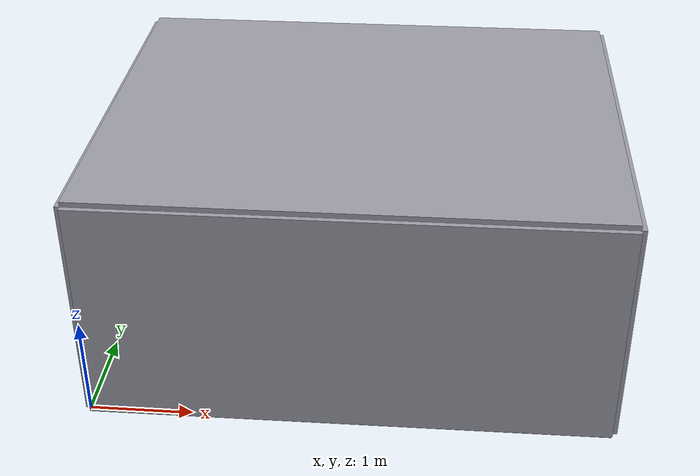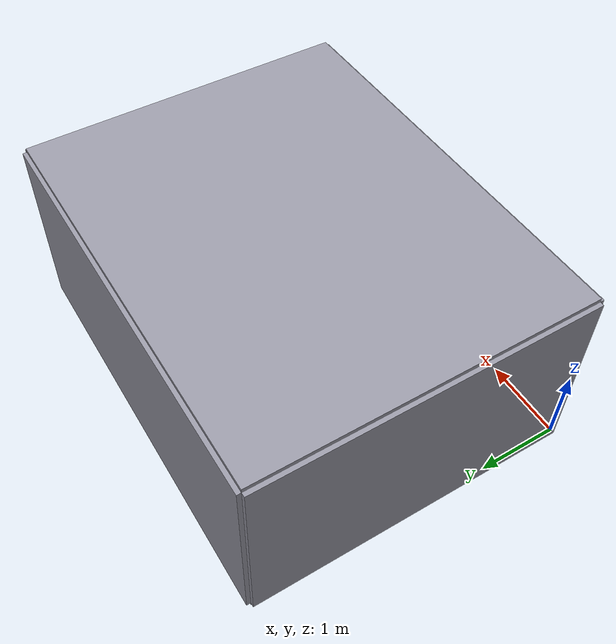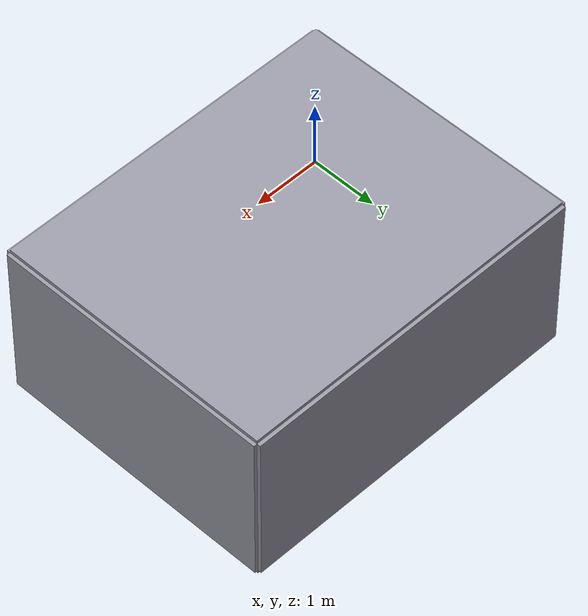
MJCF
<mujoco model="embodied-arm-room-desk-6">
  <compiler angle="radian" autolimits="true"/>
  <option timestep="0.002" integrator="implicitfast" gravity="0 0 -9.81"/>
  <default><geom contype="1" conaffinity="1" friction="0.8 0.01 0.001"/><default class="scene"><geom contype="1" conaffinity="1" friction="0.8 0.005 0.0001" rgba="0.6 0.6 0.65 1"/></default></default>
  <worldbody>
    <light pos="0 0 2" dir="0 0 -1"/>
    <geom name="counter-left" class="scene" type="box" pos="0.675 3.7 0.45" size="0.275 0.3 0.45"/>
    <geom name="sink-basin" class="scene" type="box" pos="1.275 3.7 0.36" size="0.325 0.3 0.36"/>
    <geom name="counter-right" class="scene" type="box" pos="2.6 3.7 0.45" size="1 0.3 0.45"/>
    <geom name="fridge-base" class="scene" type="box" pos="4.1 3.6 0.2" size="0.4 0.4 0.2"/>
    <geom name="fridge-left-wall" class="scene" type="box" pos="3.725 3.6 0.9" size="0.025 0.4 0.9"/>
    <geom name="fridge-right-wall" class="scene" type="box" pos="4.475 3.6 0.9" size="0.025 0.4 0.9"/>
    <geom name="fridge-back" class="scene" type="box" pos="4.1 3.975 0.9" size="0.4 0.025 0.9"/>
    <geom name="fridge-top" class="scene" type="box" pos="4.1 3.6 1.775" size="0.4 0.4 0.025"/>
    <geom name="fridge-shelf-slab" class="scene" type="box" pos="4.1 3.625 1.19" size="0.35 0.325 0.01"/>
    <geom name="island" class="scene" type="box" pos="2.4 2 0.45" size="0.6 0.4 0.45"/>
    <geom name="fridge-door" class="scene" type="box" pos="3.725 3.175 0.9" size="0.025 0.025 0.9"/>
    <geom name="fridge-door.1" class="scene" type="box" pos="3.775 3.175 0.9" size="0.025 0.025 0.9"/>
    <geom name="fridge-door.2" class="scene" type="box" pos="3.825 3.175 0.9" size="0.025 0.025 0.9"/>
    <geom name="fridge-door.3" class="scene" type="box" pos="3.875 3.175 0.9" size="0.025 0.025 0.9"/>
    <geom name="fridge-door.4" class="scene" type="box" pos="3.925 3.175 0.9" size="0.025 0.025 0.9"/>
    <geom name="fridge-door.5" class="scene" type="box" pos="3.975 3.175 0.9" size="0.025 0.025 0.9"/>
    <geom name="fridge-door.6" class="scene" type="box" pos="4.025 3.175 0.9" size="0.025 0.025 0.9"/>
    <geom name="fridge-door.7" class="scene" type="box" pos="4.075 3.175 0.9" size="0.025 0.025 0.9"/>
    <geom name="fridge-door.8" class="scene" type="box" pos="4.125 3.175 0.9" size="0.025 0.025 0.9"/>
    <geom name="fridge-door.9" class="scene" type="box" pos="4.175 3.175 0.9" size="0.025 0.025 0.9"/>
    <geom name="fridge-door.10" class="scene" type="box" pos="4.225 3.175 0.9" size="0.025 0.025 0.9"/>
    <geom name="fridge-door.11" class="scene" type="box" pos="4.275 3.175 0.9" size="0.025 0.025 0.9"/>
    <geom name="fridge-door.12" class="scene" type="box" pos="4.325 3.175 0.9" size="0.025 0.025 0.9"/>
    <geom name="fridge-door.13" class="scene" type="box" pos="4.375 3.175 0.9" size="0.025 0.025 0.9"/>
    <geom name="fridge-door.14" class="scene" type="box" pos="4.425 3.175 0.9" size="0.025 0.025 0.9"/>
    <geom name="plate-1" class="scene" type="box" pos="1.1 3.56 0.73" size="0.13 0.13 0.01"/>
    <geom name="plate-2" class="scene" type="box" pos="1.43 3.7 0.73" size="0.13 0.13 0.01"/>
    <geom name="mug-1" class="scene" type="box" pos="1.1 3.8 0.77" size="0.045 0.045 0.05"/>
    <geom name="milk-1" class="scene" type="box" pos="4.3 3.45 1.3" size="0.035 0.035 0.1"/>
    <geom name="floor" class="scene" type="box" pos="2.5 2 -0.025" size="2.5 2 0.025"/>
    <geom name="wall-south" class="scene" type="box" pos="2.5 -0.025 1.15" size="2.5 0.025 1.15"/>
    <geom name="wall-north" class="scene" type="box" pos="2.5 4.025 1.15" size="2.5 0.025 1.15"/>
    <geom name="wall-west" class="scene" type="box" pos="-0.025 2 1.15" size="0.025 2 1.15"/>
    <geom name="wall-east" class="scene" type="box" pos="5.025 2 1.15" size="0.025 2 1.15"/>
    <geom name="ceiling" class="scene" type="box" pos="2.5 2 2.325" size="2.5 2 0.025"/>
    <body name="arm-base" pos="0.9 1.4 0.3" quat="0.707107 0 0 0.707107">
      <geom name="base" type="cylinder" pos="0 0 0.026" size="0.06 0.026" contype="0" conaffinity="0" rgba="0.4 0.4 0.4 1"/>
      <body name="link1" pos="0 0 0" quat="1 0 0 0">
        <joint name="j1" type="hinge" axis="0 0 1" range="-2.617994 2.617994" armature="0.01" damping="0.623686"/>
        <geom name="link1" type="capsule" fromto="0 0 0 0 0 0.11" size="0.017" mass="0.341" rgba="0.85 0.55 0.2 1"/>
        <body name="link2" pos="0 0 0.11" quat="0.707107 0.707107 0 0">
          <joint name="j2" type="hinge" axis="0 0 1" range="-1.745329 1.745329" armature="0.02" damping="1.247373"/>
          <geom name="link2" type="capsule" fromto="0 0 0 0.16 0 0" size="0.017" mass="0.158" rgba="0.85 0.55 0.2 1"/>
          <body name="link3" pos="0.16 0 0" quat="1 0 0 0">
            <joint name="j3" type="hinge" axis="0 0 1" range="-4.18879 1.047198" armature="0.01" damping="0.623686"/>
            <geom name="link3" type="sphere" size="0.021" mass="0.094" rgba="0.85 0.55 0.2 1"/>
            <body name="link4" pos="0 0 0" quat="0.707107 -0.707107 0 0">
              <joint name="j4" type="hinge" axis="0 0 1" range="-2.617994 2.617994" armature="0.01" damping="0.623686"/>
              <geom name="link4" type="capsule" fromto="0 0 0 0 0 0.16" size="0.017" mass="0.076" rgba="0.85 0.55 0.2 1"/>
              <body name="link5" pos="0 0 0.16" quat="0.707107 0.707107 0 0">
                <joint name="j5" type="hinge" axis="0 0 1" range="-2.356194 2.356194" armature="0.01" damping="0.623686"/>
                <geom name="link5" type="sphere" size="0.021" mass="0.149" rgba="0.85 0.55 0.2 1"/>
                <body name="link6" pos="0 0 0" quat="0.707107 -0.707107 0 0">
                  <joint name="j6" type="hinge" axis="0 0 1" range="-2.96706 2.96706" armature="0.01" damping="0.623686"/>
                  <geom name="link6-mass" type="capsule" fromto="0 0 0 0 0 0.095" size="0.017" mass="0.143" contype="0" conaffinity="0" rgba="0.85 0.55 0.2 0.35"/>
      <geom name="link6" type="capsule" fromto="0 0 0 0 0 0.045" size="0.017" mass="0.000001" rgba="0.85 0.55 0.2 1"/>
                  <geom name="palm" type="box" pos="0 0 0.037" size="0.03 0.02 0.012" mass="0.001" rgba="0.3 0.3 0.3 1"/>
                  <geom name="jaw-fixed" type="box" pos="-0.0265 0 0.07" size="0.004 0.008 0.025" mass="0.001" friction="1.2 0.02 0.001" condim="4" rgba="0.2 0.2 0.2 1"/>
                  <body name="jaw" pos="0.0265 0 0.04">
                    <joint name="grip" type="hinge" axis="0 1 0" range="-0.6 0.05" damping="0.05" armature="0.01"/>
                    <geom name="jaw-moving" type="box" pos="0 0 0.0275" size="0.004 0.008 0.0275" mass="0.001" friction="1.2 0.02 0.001" condim="4" rgba="0.2 0.2 0.2 1"/>
                  </body>
                  <site name="tcp" pos="0 0 0.095" size="0.004" rgba="1 0 0 1"/>
                  <body name="payload" pos="0 0 0.095"><geom name="payload" type="sphere" size="0.005" mass="0.000001" contype="0" conaffinity="0" rgba="0 0 1 0.3"/></body>
                </body>
              </body>
            </body>
          </body>
        </body>
      </body>
    </body>
  </worldbody>
  <contact><exclude body1="world" body2="link1"/><exclude body1="link1" body2="link2"/><exclude body1="link1" body2="link3"/><exclude body1="link1" body2="link4"/><exclude body1="link1" body2="link5"/><exclude body1="link1" body2="link6"/><exclude body1="link1" body2="jaw"/><exclude body1="link2" body2="link3"/><exclude body1="link2" body2="link4"/><exclude body1="link2" body2="link5"/><exclude body1="link2" body2="link6"/><exclude body1="link2" body2="jaw"/><exclude body1="link3" body2="link4"/><exclude body1="link3" body2="link5"/><exclude body1="link3" body2="link6"/><exclude body1="link3" body2="jaw"/><exclude body1="link4" body2="link5"/><exclude body1="link4" body2="link6"/><exclude body1="link4" body2="jaw"/><exclude body1="link5" body2="link6"/><exclude body1="link5" body2="jaw"/><exclude body1="link6" body2="jaw"/><exclude body1="arm-base" body2="link1"/></contact>
  <actuator>
    <position name="j1" joint="j1" kp="58.8399" forcelimited="true" forcerange="-2.941995 2.941995" ctrlrange="-2.617994 2.617994"/>
    <position name="j2" joint="j2" kp="117.6798" forcelimited="true" forcerange="-5.88399 5.88399" ctrlrange="-1.745329 1.745329"/>
    <position name="j3" joint="j3" kp="58.8399" forcelimited="true" forcerange="-2.941995 2.941995" ctrlrange="-4.18879 1.047198"/>
    <position name="j4" joint="j4" kp="58.8399" forcelimited="true" forcerange="-2.941995 2.941995" ctrlrange="-2.617994 2.617994"/>
    <position name="j5" joint="j5" kp="58.8399" forcelimited="true" forcerange="-2.941995 2.941995" ctrlrange="-2.356194 2.356194"/>
    <position name="j6" joint="j6" kp="58.8399" forcelimited="true" forcerange="-2.941995 2.941995" ctrlrange="-2.96706 2.96706"/>
    <position name="grip" joint="grip" kp="1.5" forcelimited="true" forcerange="-0.15 0.15" ctrlrange="-0.6 0.05"/>
  </actuator>
</mujoco>
